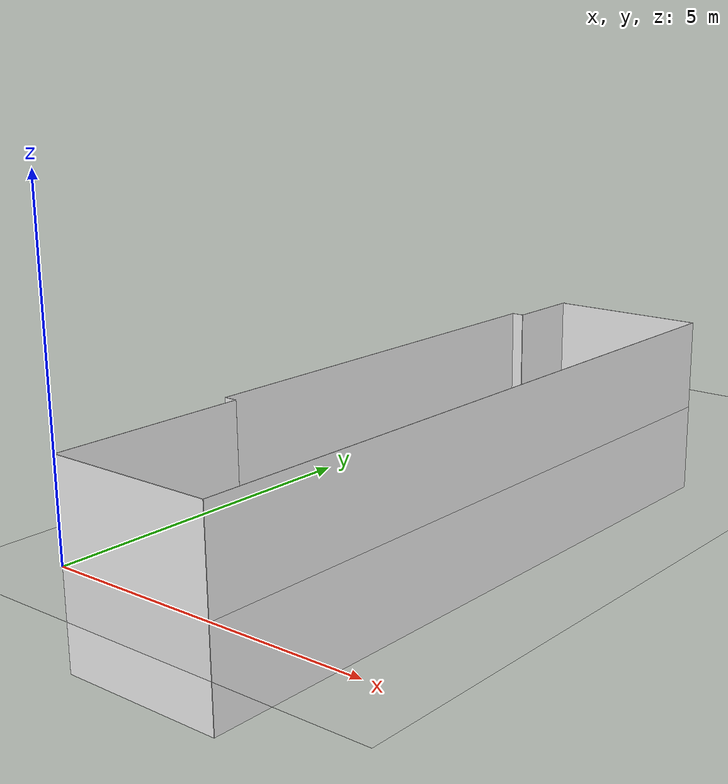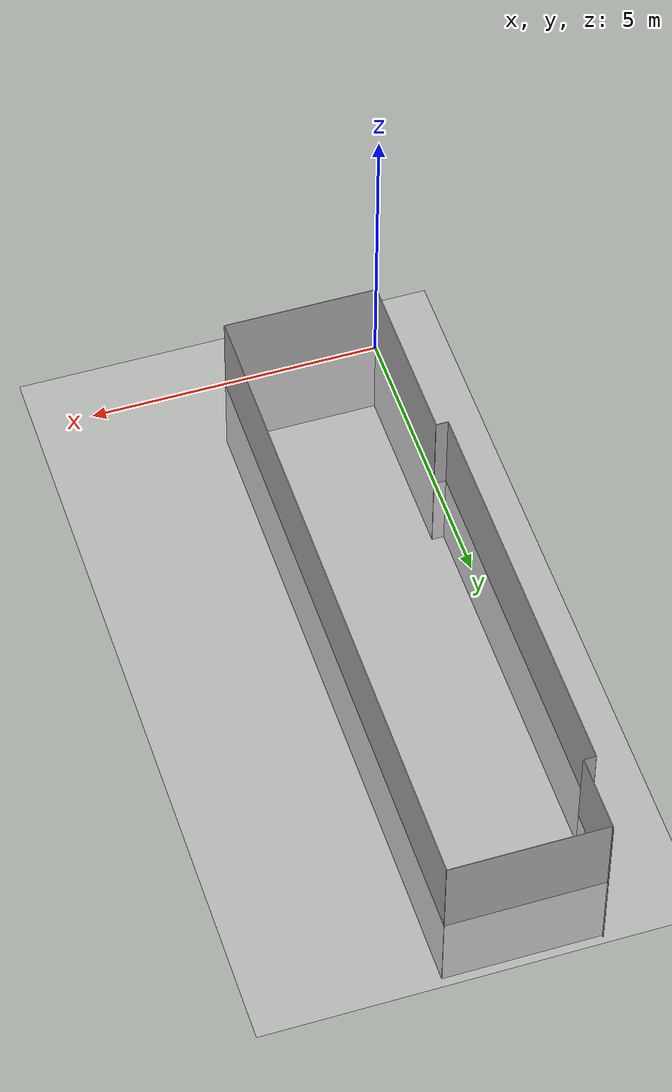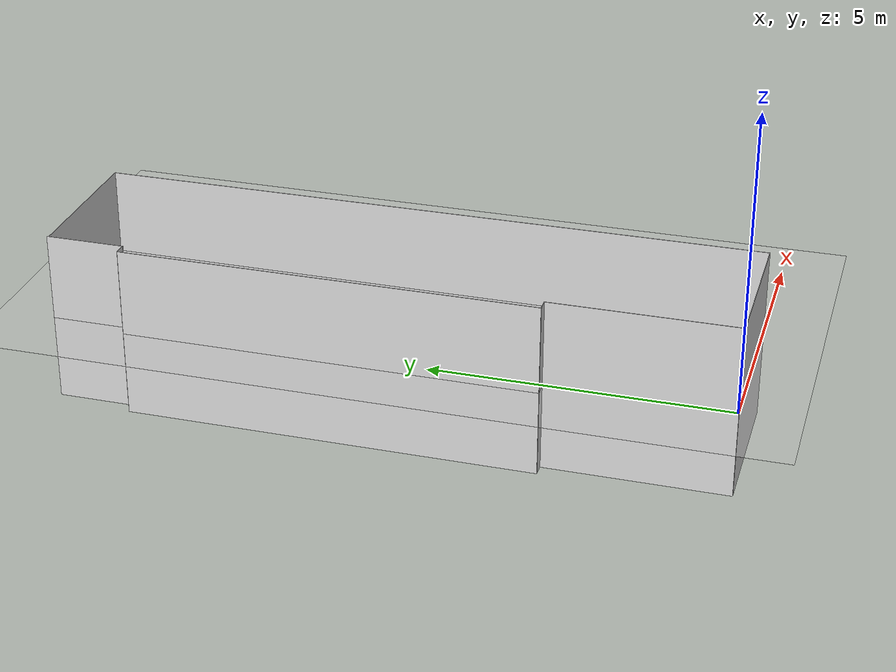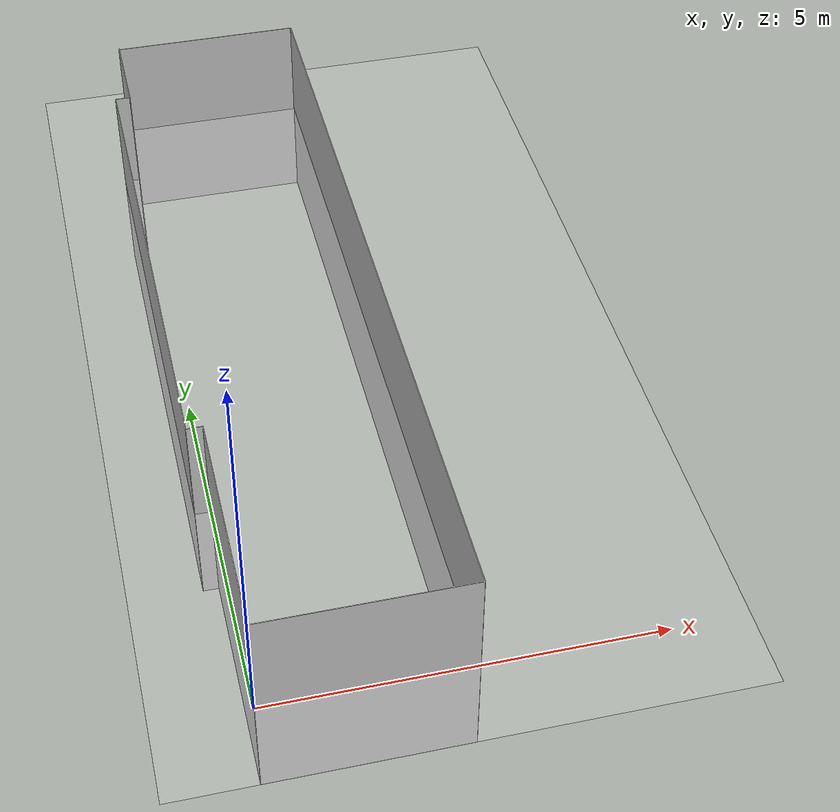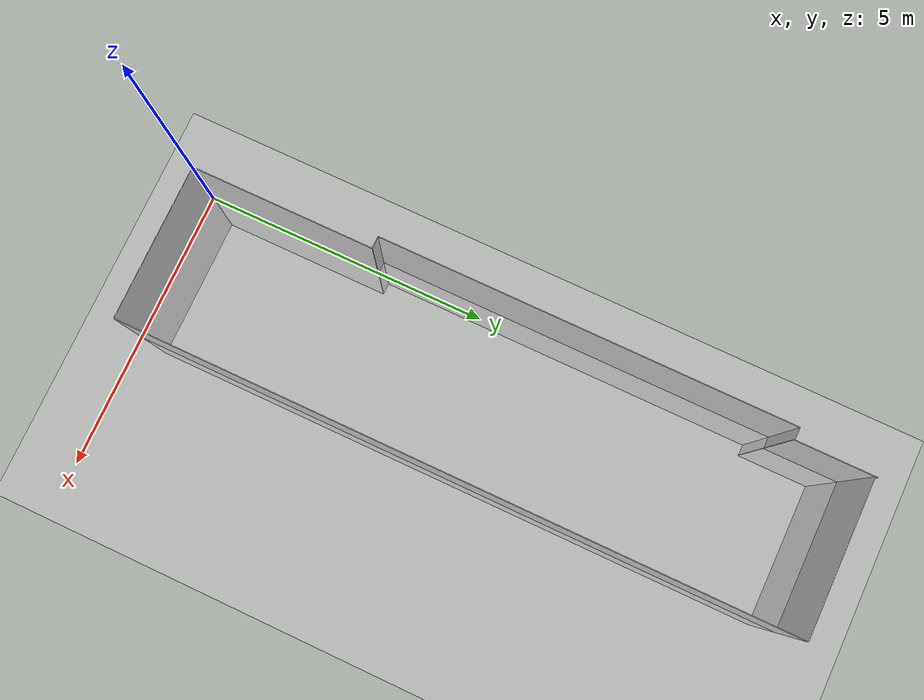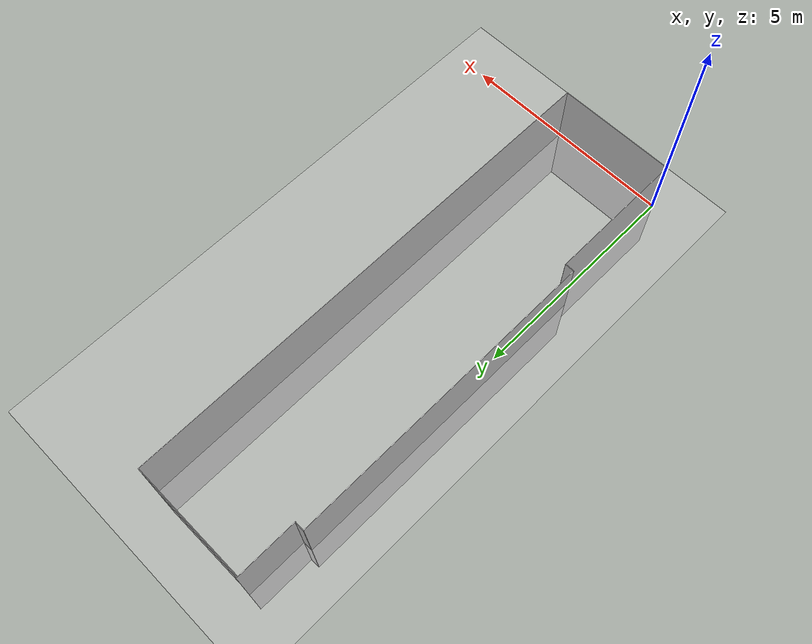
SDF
<sdf version="1.7">
 <world name="pasillo_rectangular">
  <scene><ambient>0.95 0.95 0.95 1</ambient><background>0.3 0.3 0.3 1</background><shadows>1</shadows></scene>
  <light name="sun" type="directional">
   <pose>0 0 10 0 0 0</pose>
   <diffuse>0.8 0.8 0.8 1</diffuse>
   <specular>0.2 0.2 0.2 1</specular>
   <attenuation>
    <range>1000</range>
    <constant>0.9</constant>
    <linear>0.01</linear>
    <quadratic>0.001</quadratic>
   </attenuation>
   <direction>-0.5 0.1 -0.9</direction>
  </light>
  <model name="ground_plane">
   <static>1</static>
   <link name="link">
    <collision name="collision">
     <geometry><plane><normal>0 0 1</normal><size>30 30</size></plane></geometry>
    </collision>
    <visual name="visual">
     <geometry><plane><normal>0 0 1</normal><size>30 30</size></plane></geometry>
     <material>
      <script><uri>file://media/materials/scripts/gazebo.material</uri><name>Gazebo/Grey</name></script>
     </material>
    </visual>
   </link>
  </model>
  <model name="long_wall_1">
   <static>1</static>
   <link name="link">
    <pose>0 1.55625 0 0 0 0</pose>
    <collision name="collision"><geometry><box><size>0.01 3.1125 3</size></box></geometry></collision>
    <visual name="visual">
     <geometry><box><size>0.01 3.1125 3</size></box></geometry>
     <material>
      <script><uri>file://media/materials/scripts/gazebo.material</uri><name>Gazebo/White</name></script>
     </material>
    </visual>
   </link>
  </model>
  <model name="long_wall_2">
   <static>1</static>
   <link name="link">
    <pose>-0.105 3.1125 0 0 0 0</pose>
    <collision name="collision"><geometry><box><size>0.21 0.01 3</size></box></geometry></collision>
    <visual name="visual">
     <geometry><box><size>0.21 0.01 3</size></box></geometry>
     <material>
      <script><uri>file://media/materials/scripts/gazebo.material</uri><name>Gazebo/White</name></script>
     </material>
    </visual>
   </link>
  </model>
  <model name="long_wall_3">
   <static>1</static>
   <link name="link">
    <pose>-0.21 6.6375 0 0 0 0</pose>
    <collision name="collision"><geometry><box><size>0.01 7.05 3</size></box></geometry></collision>
    <visual name="visual">
     <geometry><box><size>0.01 7.05 3</size></box></geometry>
     <material>
      <script><uri>file://media/materials/scripts/gazebo.material</uri><name>Gazebo/White</name></script>
     </material>
    </visual>
   </link>
  </model>
  <model name="long_wall_4">
   <static>1</static>
   <link name="link">
    <pose>-0.105 10.1625 0 0 0 0</pose>
    <collision name="collision"><geometry><box><size>0.21 0.01 3</size></box></geometry></collision>
    <visual name="visual">
     <geometry><box><size>0.21 0.01 3</size></box></geometry>
     <material>
      <script><uri>file://media/materials/scripts/gazebo.material</uri><name>Gazebo/White</name></script>
     </material>
    </visual>
   </link>
  </model>
  <model name="long_wall_5">
   <static>1</static>
   <link name="link">
    <pose>0 10.8285 0 0 0 0</pose>
    <collision name="collision"><geometry><box><size>0.01 1.352 3</size></box></geometry></collision>
    <visual name="visual">
     <geometry><box><size>0.01 1.352 3</size></box></geometry>
     <material>
      <script><uri>file://media/materials/scripts/gazebo.material</uri><name>Gazebo/White</name></script>
     </material>
    </visual>
   </link>
  </model>
  <model name="long_wall_6">
   <static>1</static>
   <link name="link">
    <pose>1.333 11.465 0 0 0 0</pose>
    <collision name="collision"><geometry><box><size>2.666 0.01 3</size></box></geometry></collision>
    <visual name="visual">
     <geometry><box><size>2.666 0.01 3</size></box></geometry>
     <material>
      <script><uri>file://media/materials/scripts/gazebo.material</uri><name>Gazebo/White</name></script>
     </material>
    </visual>
   </link>
  </model>
  <model name="long_wall_7">
   <static>1</static>
   <link name="link">
    <pose>1.333 0 0 0 0 0</pose>
    <collision name="collision"><geometry><box><size>2.666 0.01 3</size></box></geometry></collision>
    <visual name="visual">
     <geometry><box><size>2.666 0.01 3</size></box></geometry>
     <material>
      <script><uri>file://media/materials/scripts/gazebo.material</uri><name>Gazebo/White</name></script>
     </material>
    </visual>
   </link>
  </model>
  <model name="long_wall_">
   <static>1</static>
   <link name="link">
    <pose>2.666 5.7325 0 0 0 0</pose>
    <collision name="collision"><geometry><box><size>0.01 11.465 3</size></box></geometry></collision>
    <visual name="visual">
     <geometry><box><size>0.01 11.465 3</size></box></geometry>
     <material>
      <script><uri>file://media/materials/scripts/gazebo.material</uri><name>Gazebo/White</name></script>
     </material>
    </visual>
   </link>
  </model>
  <physics name="default_physics" default="0" type="ode">
   <ode>
    <solver>
     <type>quick</type>
     <iters>10</iters>
     <sor>1.3</sor>
     <use_dynamic_moi_rescaling>0</use_dynamic_moi_rescaling>
    </solver>
    <constraints>
     <cfm>0</cfm>
     <erp>0.2</erp>
     <contact_max_correcting_vel>100</contact_max_correcting_vel>
     <contact_surface_layer>0.001</contact_surface_layer>
    </constraints>
   </ode>
   <max_step_size>0.004</max_step_size>
   <real_time_factor>1</real_time_factor>
   <real_time_update_rate>250</real_time_update_rate>
   <gravity>0 0 -9.8066</gravity>
   <magnetic_field>6.0e-6 2.3e-5 -4.2e-5</magnetic_field>
  </physics>
  <gravity>0 0 -9.8</gravity>
  <magnetic_field>6e-06 2.3e-05 -4.2e-05</magnetic_field>
 </world>
</sdf>
